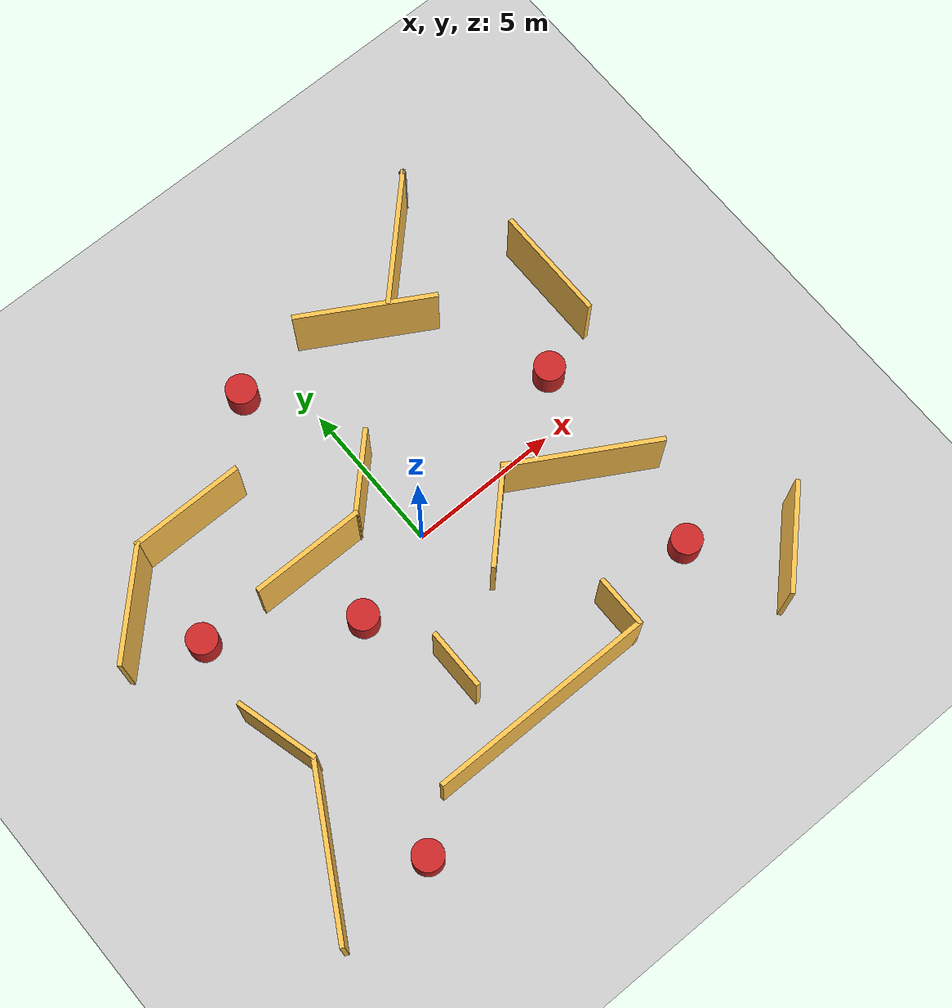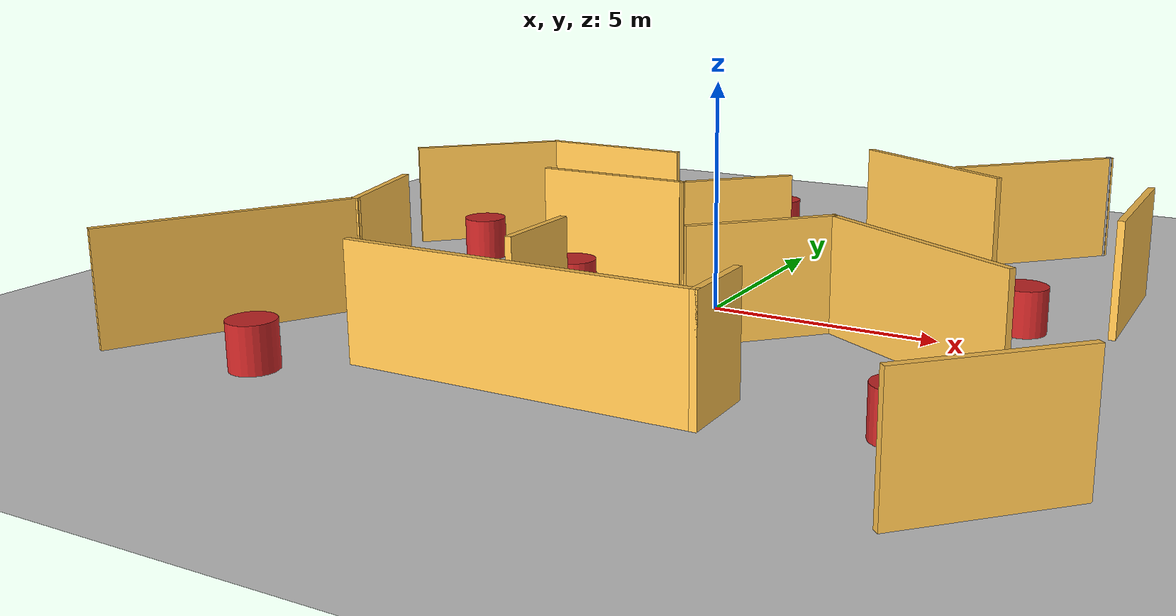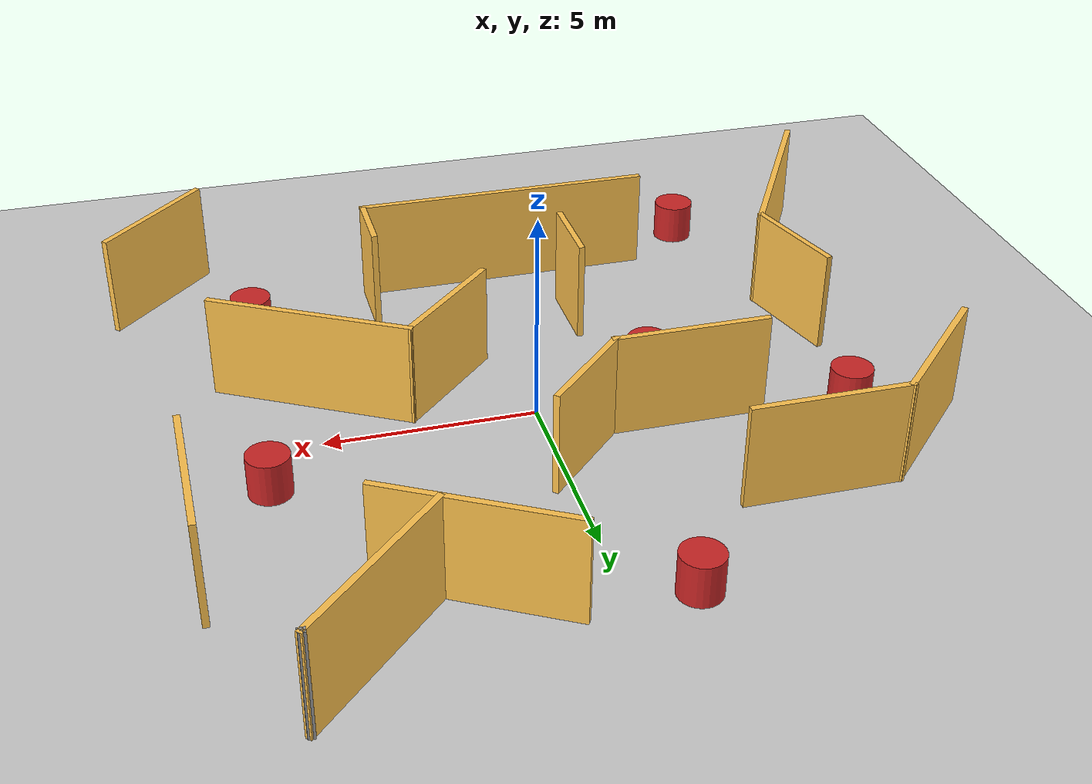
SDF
<sdf version="1.7">
 <world name="default">
  <light name="sun" type="directional">
   <pose>0 0 10 0 -0 0</pose>
   <diffuse>0.8 0.8 0.8 1</diffuse>
   <specular>0.2 0.2 0.2 1</specular>
   <attenuation>
    <range>1000</range>
    <constant>0.9</constant>
    <linear>0.01</linear>
    <quadratic>0.001</quadratic>
   </attenuation>
   <direction>-0.5 0.1 -0.9</direction>
   <spot><inner_angle>0</inner_angle><outer_angle>0</outer_angle><falloff>0</falloff></spot>
  </light>
  <model name="ground_plane">
   <static>1</static>
   <link name="link">
    <collision name="collision">
     <geometry><plane><normal>0 0 1</normal><size>100 100</size></plane></geometry>
     <surface><friction><ode><mu>100</mu><mu2>50</mu2></ode></friction></surface>
    </collision>
    <visual name="visual">
     <cast_shadows>0</cast_shadows>
     <geometry><plane><normal>0 0 1</normal><size>100 100</size></plane></geometry>
     <material>
      <script><uri>file://media/materials/scripts/gazebo.material</uri><name>Gazebo/Grey</name></script>
     </material>
    </visual>
   </link>
  </model>
  <gravity>0 0 -9.8</gravity>
  <magnetic_field>6e-06 2.3e-05 -4.2e-05</magnetic_field>
  <atmosphere type="adiabatic"/>
  <physics type="ode">
   <max_step_size>0.001</max_step_size>
   <real_time_factor>1</real_time_factor>
   <real_time_update_rate>1000</real_time_update_rate>
  </physics>
  <scene><ambient>0.4 0.4 0.4 1</ambient><background>0.7 0.7 0.7 1</background><shadows>1</shadows></scene>
  <spherical_coordinates>
   <surface_model>EARTH_WGS84</surface_model>
   <latitude_deg>0</latitude_deg>
   <longitude_deg>0</longitude_deg>
   <elevation>0</elevation>
   <heading_deg>0</heading_deg>
  </spherical_coordinates>
  <model name="enpm605">
   <pose>-0.191319 0.066062 0 0 -0 0</pose>
   <link name="Wall_0">
    <collision name="Wall_0_Collision">
     <geometry><box><size>2 0.15 2.5</size></box></geometry>
     <pose>0 0 1.25 0 -0 0</pose>
    </collision>
    <visual name="Wall_0_Visual">
     <pose>0 0 1.25 0 -0 0</pose>
     <geometry><box><size>2 0.15 2.5</size></box></geometry>
     <material>
      <script><uri>file://media/materials/scripts/gazebo.material</uri><name>Gazebo/Grey</name></script>
      <ambient>1 0.764706 0.305882 1</ambient>
     </material>
     <meta><layer>0</layer></meta>
    </visual>
    <pose>-1.78868 -4.13106 0 0 -0 -1.5708</pose>
   </link>
   <link name="Wall_11">
    <collision name="Wall_11_Collision">
     <geometry><box><size>3.75 0.15 2.5</size></box></geometry>
     <pose>0 0 1.25 0 -0 0</pose>
    </collision>
    <visual name="Wall_11_Visual">
     <pose>0 0 1.25 0 -0 0</pose>
     <geometry><box><size>3.75 0.15 2.5</size></box></geometry>
     <material>
      <script><uri>file://media/materials/scripts/gazebo.material</uri><name>Gazebo/Grey</name></script>
      <ambient>1 0.764706 0.305882 1</ambient>
     </material>
     <meta><layer>0</layer></meta>
    </visual>
    <pose>-3.06765 1.13053 0 0 -0 0</pose>
   </link>
   <link name="Wall_12">
    <collision name="Wall_12_Collision">
     <geometry><box><size>2.75 0.15 2.5</size></box></geometry>
     <pose>0 0 1.25 0 -0 0</pose>
    </collision>
    <visual name="Wall_12_Visual">
     <pose>0 0 1.25 0 -0 0</pose>
     <geometry><box><size>2.75 0.15 2.5</size></box></geometry>
     <material>
      <script><uri>file://media/materials/scripts/gazebo.material</uri><name>Gazebo/Grey</name></script>
      <ambient>1 0.764706 0.305882 1</ambient>
     </material>
     <meta><layer>0</layer></meta>
    </visual>
    <pose>-0.348414 2.04976 0 0 -0 0.785398</pose>
   </link>
   <link name="Wall_14">
    <collision name="Wall_14_Collision">
     <geometry><box><size>3.75 0.15 2.5</size></box></geometry>
     <pose>0 0 1.25 0 -0 0</pose>
    </collision>
    <visual name="Wall_14_Visual">
     <pose>0 0 1.25 0 -0 0</pose>
     <geometry><box><size>3.75 0.15 2.5</size></box></geometry>
     <material>
      <script><uri>file://media/materials/scripts/gazebo.material</uri><name>Gazebo/Grey</name></script>
      <ambient>1 0.764706 0.305882 1</ambient>
     </material>
     <meta><layer>0</layer></meta>
    </visual>
    <pose>-8.03996 3.20786 0 0 -0 0.785398</pose>
   </link>
   <link name="Wall_15">
    <collision name="Wall_15_Collision">
     <geometry><box><size>3.75 0.15 2.5</size></box></geometry>
     <pose>0 0 1.25 0 -0 0</pose>
    </collision>
    <visual name="Wall_15_Visual">
     <pose>0 0 1.25 0 -0 0</pose>
     <geometry><box><size>3.75 0.15 2.5</size></box></geometry>
     <material>
      <script><uri>file://media/materials/scripts/gazebo.material</uri><name>Gazebo/Grey</name></script>
      <ambient>1 0.764706 0.305882 1</ambient>
     </material>
     <meta><layer>0</layer></meta>
    </visual>
    <pose>-4.96717 4.48065 0 0 -0 0</pose>
   </link>
   <link name="Wall_17">
    <collision name="Wall_17_Collision">
     <geometry><box><size>3.75 0.15 2.5</size></box></geometry>
     <pose>0 0 1.25 0 -0 0</pose>
    </collision>
    <visual name="Wall_17_Visual">
     <pose>0 0 1.25 0 -0 0</pose>
     <geometry><box><size>3.75 0.15 2.5</size></box></geometry>
     <material>
      <script><uri>file://media/materials/scripts/gazebo.material</uri><name>Gazebo/Grey</name></script>
      <ambient>1 0.764706 0.305882 1</ambient>
     </material>
     <meta><layer>0</layer></meta>
    </visual>
    <pose>8.30608 3.58059 0 0 -0 -1.5708</pose>
   </link>
   <link name="Wall_19">
    <collision name="Wall_19_Collision">
     <geometry><box><size>4.5 0.15 2.5</size></box></geometry>
     <pose>0 0 1.25 0 -0 0</pose>
    </collision>
    <visual name="Wall_19_Visual">
     <pose>0 0 1.25 0 -0 0</pose>
     <geometry><box><size>4.5 0.15 2.5</size></box></geometry>
     <material>
      <script><uri>file://media/materials/scripts/gazebo.material</uri><name>Gazebo/Grey</name></script>
      <ambient>1 0.764706 0.305882 1</ambient>
     </material>
     <meta><layer>0</layer></meta>
    </visual>
    <pose>3.0695 6.07314 0 0 -0 -0.523599</pose>
   </link>
   <link name="Wall_2">
    <collision name="Wall_2_Collision">
     <geometry><box><size>3.25 0.15 2.5</size></box></geometry>
     <pose>0 0 1.25 0 -0 0</pose>
    </collision>
    <visual name="Wall_2_Visual">
     <pose>0 0 1.25 0 -0 0</pose>
     <geometry><box><size>3.25 0.15 2.5</size></box></geometry>
     <material>
      <script><uri>file://media/materials/scripts/gazebo.material</uri><name>Gazebo/Grey</name></script>
      <ambient>1 0.764706 0.305882 1</ambient>
     </material>
     <meta><layer>0</layer></meta>
    </visual>
    <pose>1.92734 -1.58005 0 0 -0 0.785398</pose>
   </link>
   <link name="Wall_23">
    <collision name="Wall_23_Collision">
     <geometry><box><size>3.5 0.15 2.5</size></box></geometry>
     <pose>0 0 1.25 0 -0 0</pose>
    </collision>
    <visual name="Wall_23_Visual">
     <pose>0 0 1.25 0 -0 0</pose>
     <geometry><box><size>3.5 0.15 2.5</size></box></geometry>
     <material>
      <script><uri>file://media/materials/scripts/gazebo.material</uri><name>Gazebo/Grey</name></script>
      <ambient>1 0.764706 0.305882 1</ambient>
     </material>
     <meta><layer>0</layer></meta>
    </visual>
    <pose>8.1959 -7.63491 0 0 -0 0.785398</pose>
   </link>
   <link name="Wall_25">
    <collision name="Wall_25_Collision">
     <geometry><box><size>0.16 0.15 2.5</size></box></geometry>
     <pose>0 0 1.25 0 -0 0</pose>
    </collision>
    <visual name="Wall_25_Visual">
     <pose>0 0 1.25 0 -0 0</pose>
     <geometry><box><size>0.16 0.15 2.5</size></box></geometry>
     <material>
      <script><uri>file://media/materials/scripts/gazebo.material</uri><name>Gazebo/Grey</name></script>
      <ambient>1 1 1 1</ambient>
     </material>
     <meta><layer>0</layer></meta>
    </visual>
    <pose>6.77377 8.81932 0 0 -0 0</pose>
   </link>
   <link name="Wall_26">
    <collision name="Wall_26_Collision">
     <geometry><box><size>4.5 0.15 2.5</size></box></geometry>
     <pose>0 0 1.25 0 -0 0</pose>
    </collision>
    <visual name="Wall_26_Visual">
     <pose>0 0 1.25 0 -0 0</pose>
     <geometry><box><size>4.5 0.15 2.5</size></box></geometry>
     <material>
      <script><uri>file://media/materials/scripts/gazebo.material</uri><name>Gazebo/Grey</name></script>
      <ambient>1 0.764706 0.305882 1</ambient>
     </material>
     <meta><layer>0</layer></meta>
    </visual>
    <pose>5.24081 7.28136 0 0 -0 -2.35619</pose>
   </link>
   <link name="Wall_3">
    <collision name="Wall_3_Collision">
     <geometry><box><size>5 0.15 2.5</size></box></geometry>
     <pose>0 0 1.25 0 -0 0</pose>
    </collision>
    <visual name="Wall_3_Visual">
     <pose>0 0 1.25 0 -0 0</pose>
     <geometry><box><size>5 0.15 2.5</size></box></geometry>
     <material>
      <script><uri>file://media/materials/scripts/gazebo.material</uri><name>Gazebo/Grey</name></script>
      <ambient>1 0.764706 0.305882 1</ambient>
     </material>
     <meta><layer>0</layer></meta>
    </visual>
    <pose>5.12346 -1.69653 0 0 -0 -0.523599</pose>
   </link>
   <link name="Wall_5">
    <collision name="Wall_5_Collision">
     <geometry><box><size>7.5 0.15 2.5</size></box></geometry>
     <pose>0 0 1.25 0 -0 0</pose>
    </collision>
    <visual name="Wall_5_Visual">
     <pose>0 0 1.25 0 -0 0</pose>
     <geometry><box><size>7.5 0.15 2.5</size></box></geometry>
     <material>
      <script><uri>file://media/materials/scripts/gazebo.material</uri><name>Gazebo/Grey</name></script>
      <ambient>1 0.764706 0.305882 1</ambient>
     </material>
     <meta><layer>0</layer></meta>
    </visual>
    <pose>-0.689813 -6.67354 0 0 -0 0</pose>
   </link>
   <link name="Wall_6">
    <collision name="Wall_6_Collision">
     <geometry><box><size>1.75 0.15 2.5</size></box></geometry>
     <pose>0 0 1.25 0 -0 0</pose>
    </collision>
    <visual name="Wall_6_Visual">
     <pose>0 0 1.25 0 -0 0</pose>
     <geometry><box><size>1.75 0.15 2.5</size></box></geometry>
     <material>
      <script><uri>file://media/materials/scripts/gazebo.material</uri><name>Gazebo/Grey</name></script>
      <ambient>1 0.764706 0.305882 1</ambient>
     </material>
     <meta><layer>0</layer></meta>
    </visual>
    <pose>2.98519 -5.87354 0 0 -0 1.5708</pose>
   </link>
   <link name="Wall_8">
    <collision name="Wall_8_Collision">
     <geometry><box><size>2.75 0.15 2.5</size></box></geometry>
     <pose>0 0 1.25 0 -0 0</pose>
    </collision>
    <visual name="Wall_8_Visual">
     <pose>0 0 1.25 0 -0 0</pose>
     <geometry><box><size>2.75 0.15 2.5</size></box></geometry>
     <material>
      <script><uri>file://media/materials/scripts/gazebo.material</uri><name>Gazebo/Grey</name></script>
      <ambient>1 0.764706 0.305882 1</ambient>
     </material>
     <meta><layer>0</layer></meta>
    </visual>
    <pose>-7.04538 -2.45835 0 0 -0 -1.309</pose>
   </link>
   <link name="Wall_9">
    <collision name="Wall_9_Collision">
     <geometry><box><size>5.5 0.15 2.5</size></box></geometry>
     <pose>0 0 1.25 0 -0 0</pose>
    </collision>
    <visual name="Wall_9_Visual">
     <pose>0 0 1.25 0 -0 0</pose>
     <geometry><box><size>5.5 0.15 2.5</size></box></geometry>
     <material>
      <script><uri>file://media/materials/scripts/gazebo.material</uri><name>Gazebo/Grey</name></script>
      <ambient>1 0.764706 0.305882 1</ambient>
     </material>
     <meta><layer>0</layer></meta>
    </visual>
    <pose>-8.04642 -6.03067 0 0 -0 -2.0944</pose>
   </link>
   <static>1</static>
  </model>
  <model name="unit_cylinder">
   <link name="link">
    <inertial>
     <mass>1</mass>
     <inertia><ixx>0.145833</ixx><ixy>0</ixy><ixz>0</ixz><iyy>0.145833</iyy><iyz>0</iyz><izz>0.125</izz></inertia>
    </inertial>
    <visual name="visual">
     <geometry><cylinder><radius>0.5</radius><length>1</length></cylinder></geometry>
     <material>
      <script><name>Gazebo/Red</name><uri>file://media/materials/scripts/gazebo.material</uri></script>
      <shader type="pixel"><normal_map>__default__</normal_map></shader>
      <ambient>1 0 0 1</ambient>
      <diffuse>1 0 0 1</diffuse>
      <specular>0.1 0.1 0.1 1</specular>
      <emissive>0 0 0 1</emissive>
     </material>
    </visual>
    <collision name="collision">
     <geometry><cylinder><radius>0.5</radius><length>1</length></cylinder></geometry>
     <surface>
      <friction>
       <ode><mu>1</mu><mu2>1</mu2><fdir1>0 0 0</fdir1><slip1>0</slip1><slip2>0</slip2></ode>
       <torsional>
        <coefficient>1</coefficient>
        <patch_radius>0</patch_radius>
        <surface_radius>0</surface_radius>
        <use_patch_radius>1</use_patch_radius>
        <ode><slip>0</slip></ode>
       </torsional>
      </friction>
      <bounce><restitution_coefficient>0</restitution_coefficient><threshold>1e+06</threshold></bounce>
      <contact>
       <collide_without_contact>0</collide_without_contact>
       <collide_without_contact_bitmask>1</collide_without_contact_bitmask>
       <collide_bitmask>1</collide_bitmask>
       <ode>
        <soft_cfm>0</soft_cfm>
        <soft_erp>0.2</soft_erp>
        <kp>1e+13</kp>
        <kd>1</kd>
        <max_vel>0.01</max_vel>
        <min_depth>0</min_depth>
       </ode>
       <bullet>
        <split_impulse>1</split_impulse>
        <split_impulse_penetration_threshold>-0.01</split_impulse_penetration_threshold>
        <soft_cfm>0</soft_cfm>
        <soft_erp>0.2</soft_erp>
        <kp>1e+13</kp>
        <kd>1</kd>
       </bullet>
      </contact>
     </surface>
    </collision>
   </link>
   <static>0</static>
   <pose>-3.040260 -0.991311 0.5 0 -0 0</pose>
  </model>
  <model name="unit_cylinder_clone">
   <link name="link">
    <inertial>
     <mass>1</mass>
     <inertia><ixx>0.145833</ixx><ixy>0</ixy><ixz>0</ixz><iyy>0.145833</iyy><iyz>0</iyz><izz>0.125</izz></inertia>
    </inertial>
    <visual name="visual">
     <geometry><cylinder><radius>0.5</radius><length>1</length></cylinder></geometry>
     <material>
      <script><name>Gazebo/Red</name><uri>file://media/materials/scripts/gazebo.material</uri></script>
      <shader type="pixel"><normal_map>__default__</normal_map></shader>
      <ambient>1 0 0 1</ambient>
      <diffuse>1 0 0 1</diffuse>
      <specular>0.1 0.1 0.1 1</specular>
      <emissive>0 0 0 1</emissive>
     </material>
    </visual>
    <collision name="collision">
     <geometry><cylinder><radius>0.5</radius><length>1</length></cylinder></geometry>
     <surface>
      <friction>
       <ode><mu>1</mu><mu2>1</mu2><fdir1>0 0 0</fdir1><slip1>0</slip1><slip2>0</slip2></ode>
       <torsional>
        <coefficient>1</coefficient>
        <patch_radius>0</patch_radius>
        <surface_radius>0</surface_radius>
        <use_patch_radius>1</use_patch_radius>
        <ode><slip>0</slip></ode>
       </torsional>
      </friction>
      <bounce><restitution_coefficient>0</restitution_coefficient><threshold>1e+06</threshold></bounce>
      <contact>
       <collide_without_contact>0</collide_without_contact>
       <collide_without_contact_bitmask>1</collide_without_contact_bitmask>
       <collide_bitmask>1</collide_bitmask>
       <ode>
        <soft_cfm>0</soft_cfm>
        <soft_erp>0.2</soft_erp>
        <kp>1e+13</kp>
        <kd>1</kd>
        <max_vel>0.01</max_vel>
        <min_depth>0</min_depth>
       </ode>
       <bullet>
        <split_impulse>1</split_impulse>
        <split_impulse_penetration_threshold>-0.01</split_impulse_penetration_threshold>
        <soft_cfm>0</soft_cfm>
        <soft_erp>0.2</soft_erp>
        <kp>1e+13</kp>
        <kd>1</kd>
       </bullet>
      </contact>
     </surface>
    </collision>
   </link>
   <static>0</static>
   <pose>-7.173269 1.486082 0.5 0 -0 0</pose>
  </model>
  <model name="unit_cylinder_clone_0">
   <link name="link">
    <inertial>
     <mass>1</mass>
     <inertia><ixx>0.145833</ixx><ixy>0</ixy><ixz>0</ixz><iyy>0.145833</iyy><iyz>0</iyz><izz>0.125</izz></inertia>
    </inertial>
    <visual name="visual">
     <geometry><cylinder><radius>0.5</radius><length>1</length></cylinder></geometry>
     <material>
      <script><name>Gazebo/Red</name><uri>file://media/materials/scripts/gazebo.material</uri></script>
      <shader type="pixel"><normal_map>__default__</normal_map></shader>
      <ambient>1 0 0 1</ambient>
      <diffuse>1 0 0 1</diffuse>
      <specular>0.1 0.1 0.1 1</specular>
      <emissive>0 0 0 1</emissive>
     </material>
    </visual>
    <collision name="collision">
     <geometry><cylinder><radius>0.5</radius><length>1</length></cylinder></geometry>
     <surface>
      <friction>
       <ode><mu>1</mu><mu2>1</mu2><fdir1>0 0 0</fdir1><slip1>0</slip1><slip2>0</slip2></ode>
       <torsional>
        <coefficient>1</coefficient>
        <patch_radius>0</patch_radius>
        <surface_radius>0</surface_radius>
        <use_patch_radius>1</use_patch_radius>
        <ode><slip>0</slip></ode>
       </torsional>
      </friction>
      <bounce><restitution_coefficient>0</restitution_coefficient><threshold>1e+06</threshold></bounce>
      <contact>
       <collide_without_contact>0</collide_without_contact>
       <collide_without_contact_bitmask>1</collide_without_contact_bitmask>
       <collide_bitmask>1</collide_bitmask>
       <ode>
        <soft_cfm>0</soft_cfm>
        <soft_erp>0.2</soft_erp>
        <kp>1e+13</kp>
        <kd>1</kd>
        <max_vel>0.01</max_vel>
        <min_depth>0</min_depth>
       </ode>
       <bullet>
        <split_impulse>1</split_impulse>
        <split_impulse_penetration_threshold>-0.01</split_impulse_penetration_threshold>
        <soft_cfm>0</soft_cfm>
        <soft_erp>0.2</soft_erp>
        <kp>1e+13</kp>
        <kd>1</kd>
       </bullet>
      </contact>
     </surface>
    </collision>
   </link>
   <static>0</static>
   <pose>-1.436605 6.973949 0.5 0 -0 0</pose>
  </model>
  <model name="unit_cylinder_clone_1">
   <link name="link">
    <inertial>
     <mass>1</mass>
     <inertia><ixx>0.145833</ixx><ixy>0</ixy><ixz>0</ixz><iyy>0.145833</iyy><iyz>0</iyz><izz>0.125</izz></inertia>
    </inertial>
    <visual name="visual">
     <geometry><cylinder><radius>0.5</radius><length>1</length></cylinder></geometry>
     <material>
      <script><name>Gazebo/Red</name><uri>file://media/materials/scripts/gazebo.material</uri></script>
      <shader type="pixel"><normal_map>__default__</normal_map></shader>
      <ambient>1 0 0 1</ambient>
      <diffuse>1 0 0 1</diffuse>
      <specular>0.1 0.1 0.1 1</specular>
      <emissive>0 0 0 1</emissive>
     </material>
    </visual>
    <collision name="collision">
     <geometry><cylinder><radius>0.5</radius><length>1</length></cylinder></geometry>
     <surface>
      <friction>
       <ode><mu>1</mu><mu2>1</mu2><fdir1>0 0 0</fdir1><slip1>0</slip1><slip2>0</slip2></ode>
       <torsional>
        <coefficient>1</coefficient>
        <patch_radius>0</patch_radius>
        <surface_radius>0</surface_radius>
        <use_patch_radius>1</use_patch_radius>
        <ode><slip>0</slip></ode>
       </torsional>
      </friction>
      <bounce><restitution_coefficient>0</restitution_coefficient><threshold>1e+06</threshold></bounce>
      <contact>
       <collide_without_contact>0</collide_without_contact>
       <collide_without_contact_bitmask>1</collide_without_contact_bitmask>
       <collide_bitmask>1</collide_bitmask>
       <ode>
        <soft_cfm>0</soft_cfm>
        <soft_erp>0.2</soft_erp>
        <kp>1e+13</kp>
        <kd>1</kd>
        <max_vel>0.01</max_vel>
        <min_depth>0</min_depth>
       </ode>
       <bullet>
        <split_impulse>1</split_impulse>
        <split_impulse_penetration_threshold>-0.01</split_impulse_penetration_threshold>
        <soft_cfm>0</soft_cfm>
        <soft_erp>0.2</soft_erp>
        <kp>1e+13</kp>
        <kd>1</kd>
       </bullet>
      </contact>
     </surface>
    </collision>
   </link>
   <static>0</static>
   <pose>6.356219 1.490824 0.5 0 -0 0</pose>
  </model>
  <model name="cylinder_six">
   <link name="link">
    <inertial>
     <mass>1</mass>
     <inertia><ixx>0.145833</ixx><ixy>0</ixy><ixz>0</ixz><iyy>0.145833</iyy><iyz>0</iyz><izz>0.125</izz></inertia>
    </inertial>
    <visual name="visual">
     <geometry><cylinder><radius>0.5</radius><length>1</length></cylinder></geometry>
     <material>
      <script><name>Gazebo/Red</name><uri>file://media/materials/scripts/gazebo.material</uri></script>
      <shader type="pixel"><normal_map>__default__</normal_map></shader>
      <ambient>1 0 0 1</ambient>
      <diffuse>1 0 0 1</diffuse>
      <specular>0.1 0.1 0.1 1</specular>
      <emissive>0 0 0 1</emissive>
     </material>
    </visual>
    <collision name="collision">
     <geometry><cylinder><radius>0.5</radius><length>1</length></cylinder></geometry>
     <surface>
      <friction>
       <ode><mu>1</mu><mu2>1</mu2><fdir1>0 0 0</fdir1><slip1>0</slip1><slip2>0</slip2></ode>
       <torsional>
        <coefficient>1</coefficient>
        <patch_radius>0</patch_radius>
        <surface_radius>0</surface_radius>
        <use_patch_radius>1</use_patch_radius>
        <ode><slip>0</slip></ode>
       </torsional>
      </friction>
      <bounce><restitution_coefficient>0</restitution_coefficient><threshold>1e+06</threshold></bounce>
      <contact>
       <collide_without_contact>0</collide_without_contact>
       <collide_without_contact_bitmask>1</collide_without_contact_bitmask>
       <collide_bitmask>1</collide_bitmask>
       <ode>
        <soft_cfm>0</soft_cfm>
        <soft_erp>0.2</soft_erp>
        <kp>1e+13</kp>
        <kd>1</kd>
        <max_vel>0.01</max_vel>
        <min_depth>0</min_depth>
       </ode>
       <bullet>
        <split_impulse>1</split_impulse>
        <split_impulse_penetration_threshold>-0.01</split_impulse_penetration_threshold>
        <soft_cfm>0</soft_cfm>
        <soft_erp>0.2</soft_erp>
        <kp>1e+13</kp>
        <kd>1</kd>
       </bullet>
      </contact>
     </surface>
    </collision>
   </link>
   <static>0</static>
   <pose>5.929949 -5.381597 0.5 0 -0 0</pose>
  </model>
  <model name="unit_cylinder_clone_2">
   <link name="link">
    <inertial>
     <mass>1</mass>
     <inertia><ixx>0.145833</ixx><ixy>0</ixy><ixz>0</ixz><iyy>0.145833</iyy><iyz>0</iyz><izz>0.125</izz></inertia>
    </inertial>
    <visual name="visual">
     <geometry><cylinder><radius>0.5</radius><length>1</length></cylinder></geometry>
     <material>
      <script><name>Gazebo/Red</name><uri>file://media/materials/scripts/gazebo.material</uri></script>
      <shader type="pixel"><normal_map>__default__</normal_map></shader>
      <ambient>1 0 0 1</ambient>
      <diffuse>1 0 0 1</diffuse>
      <specular>0.1 0.1 0.1 1</specular>
      <emissive>0 0 0 1</emissive>
     </material>
    </visual>
    <collision name="collision">
     <geometry><cylinder><radius>0.5</radius><length>1</length></cylinder></geometry>
     <surface>
      <friction>
       <ode><mu>1</mu><mu2>1</mu2><fdir1>0 0 0</fdir1><slip1>0</slip1><slip2>0</slip2></ode>
       <torsional>
        <coefficient>1</coefficient>
        <patch_radius>0</patch_radius>
        <surface_radius>0</surface_radius>
        <use_patch_radius>1</use_patch_radius>
        <ode><slip>0</slip></ode>
       </torsional>
      </friction>
      <bounce><restitution_coefficient>0</restitution_coefficient><threshold>1e+06</threshold></bounce>
      <contact>
       <collide_without_contact>0</collide_without_contact>
       <collide_without_contact_bitmask>1</collide_without_contact_bitmask>
       <collide_bitmask>1</collide_bitmask>
       <ode>
        <soft_cfm>0</soft_cfm>
        <soft_erp>0.2</soft_erp>
        <kp>1e+13</kp>
        <kd>1</kd>
        <max_vel>0.01</max_vel>
        <min_depth>0</min_depth>
       </ode>
       <bullet>
        <split_impulse>1</split_impulse>
        <split_impulse_penetration_threshold>-0.01</split_impulse_penetration_threshold>
        <soft_cfm>0</soft_cfm>
        <soft_erp>0.2</soft_erp>
        <kp>1e+13</kp>
        <kd>1</kd>
       </bullet>
      </contact>
     </surface>
    </collision>
   </link>
   <static>0</static>
   <pose>-6.071412 -7.727884 0.5 0 -0 0</pose>
  </model>
 </world>
</sdf>
